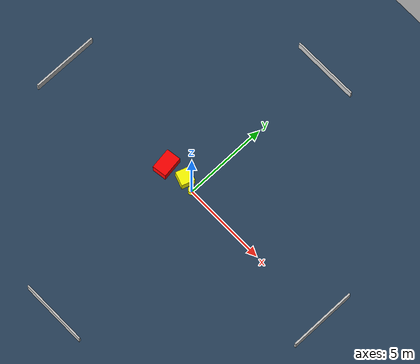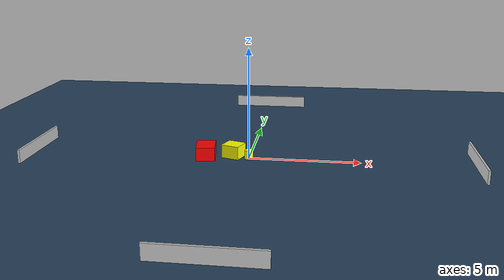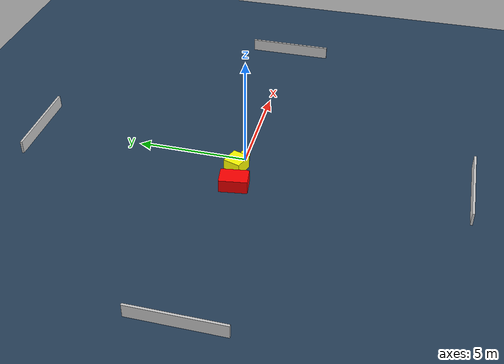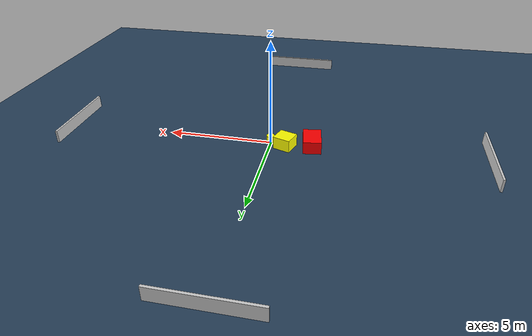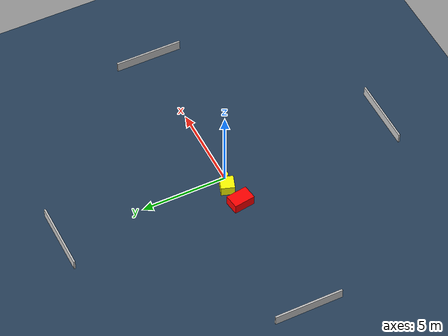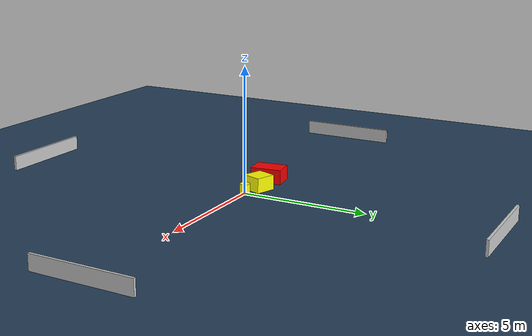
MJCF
<?xml version="1.0" ?>
<mujoco model="generated_environment">
  <option timestep="0.01" integrator="RK4" cone="elliptic"/>
  <default>
    <geom density="1"/>
  </default>
  <asset>
    <texture builtin="gradient" height="3072" name="skybox" rgb1="0.3 0.5 0.7" rgb2="0 0 0" type="skybox" width="512"/>
    <texture builtin="checker" height="300" name="groundplane" rgb1="0.2 0.3 0.4" rgb2="0.1 0.2 0.3" type="2d" width="300"/>
    <material name="groundplane" reflectance="0.2" texrepeat="5 5" texture="groundplane"/>
  </asset>
  <worldbody>
    <light dir="0 0 -1" directional="true" pos="0 0 1.5"/>
    <geom condim="3" friction="0.5 0.005 0.001" material="groundplane" name="floor" pos="0 0 0" size="0 0 0.05" type="plane"/>
    <body name="walls">
      <geom name="wall_1" condim="4" pos="-10.0 0.0 0.3" rgba="0.800000011920929 0.800000011920929 0.800000011920929 1.0" size="0.05 2.0 0.3" type="box"/>
      <geom name="wall_2" condim="4" pos="10.0 0.0 0.3" rgba="0.800000011920929 0.800000011920929 0.800000011920929 1.0" size="0.05 2.0 0.3" type="box"/>
      <geom name="wall_3" condim="4" pos="0.0 -10.0 0.3" rgba="0.800000011920929 0.800000011920929 0.800000011920929 1.0" size="2.0 0.05 0.3" type="box"/>
      <geom name="wall_4" condim="4" pos="0.0 10.0 0.3" rgba="0.800000011920929 0.800000011920929 0.800000011920929 1.0" size="2.0 0.05 0.3" type="box"/>
    </body>
    <body name="robot">
      <joint name="joint_x" type="slide" pos="0 0 0" axis="1 0 0"/>
      <joint name="joint_y" type="slide" pos="0 0 0" axis="0 1 0"/>
      <geom name="robot" type="cylinder" pos="0.0 0.0 0.2" size="0.2 0.2 0.0" mass="5.0" friction="1.0 0.005 0.0001" condim="4" rgba="1.0 1.0 0.0 1.0"/>
    </body>
    <body name="obstacle_1_movable">
      <geom name="obstacle_1_movable" condim="4" pos="-0.7315320237541604 0.22051572337643205 0.3" euler="0 0 71.06304799760045" friction="0.0 0.005 0.001" rgba="1.0 1.0 0.0 1.0" size="0.39771566211183074 0.4203313962598471 0.3" type="box" mass="0.1"/>
      <joint type="free"/>
    </body>
    <body name="obstacle_2_static">
      <geom name="obstacle_2_static" condim="4" pos="-1.9765422060668645 0.011770403668375513 0.3" euler="0 0 98.00004373461881" friction="0.0 0.005 0.001" rgba="1.0 0.0 0.0 1.0" size="0.6290761116742961 0.42704967776189084 0.3" type="box"/>
    </body>
  </worldbody>
  <actuator>
    <motor name="actuator_x" joint="joint_x" gear="1" ctrlrange="-1 1"/>
    <motor name="actuator_y" joint="joint_y" gear="1" ctrlrange="-1 1"/>
  </actuator>
</mujoco>
